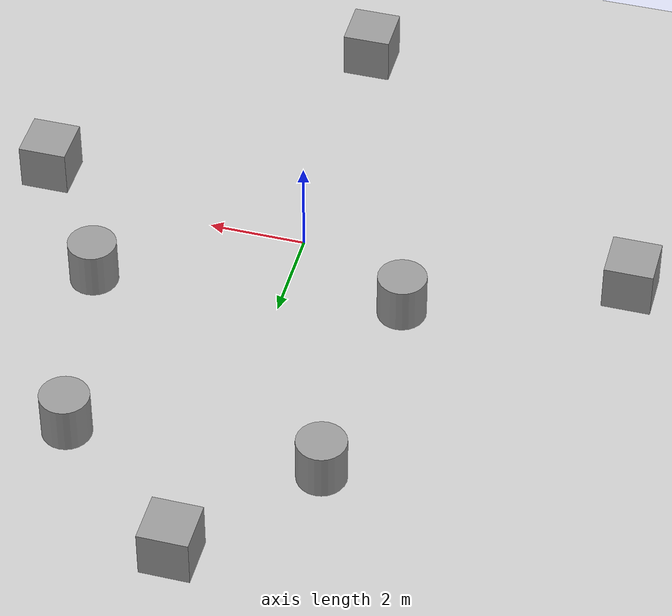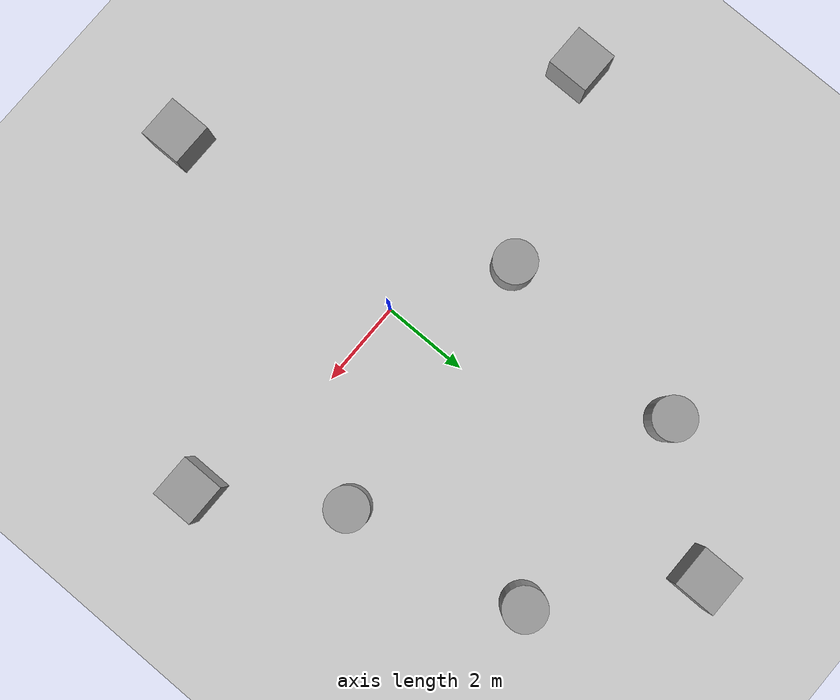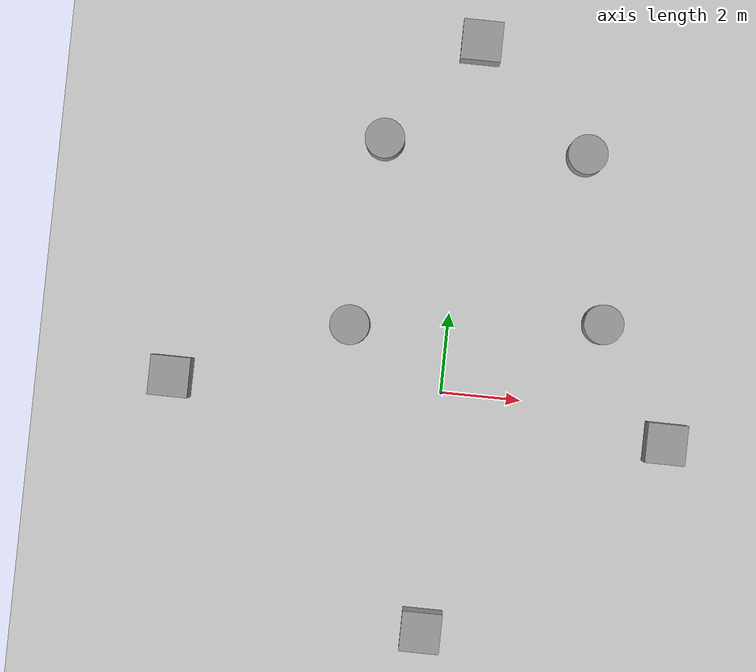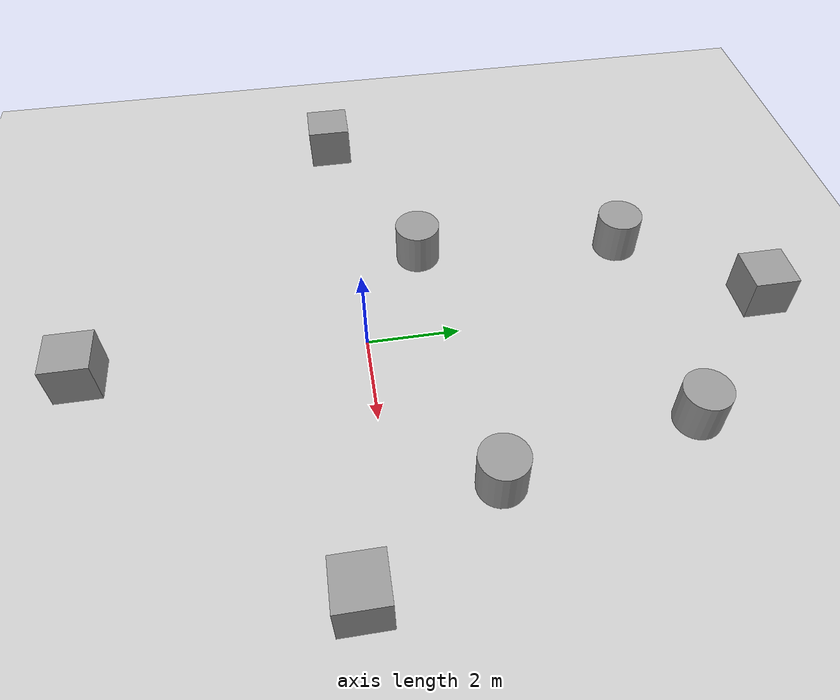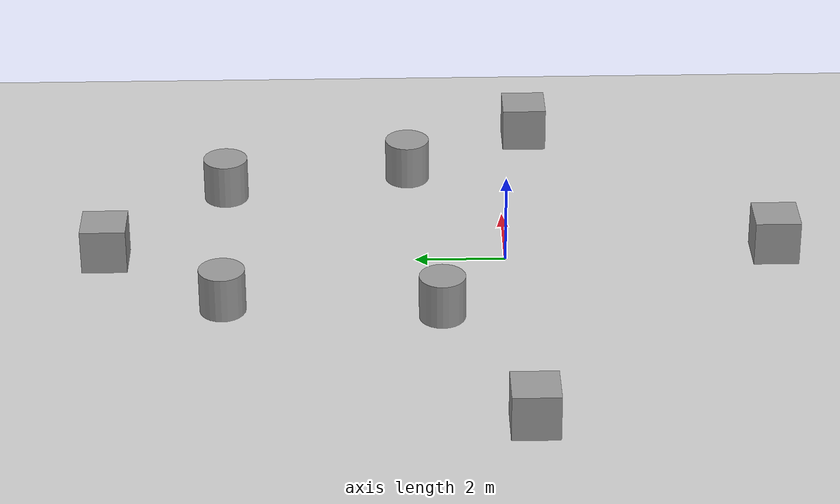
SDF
<?xml version="1.0"?>
<sdf version='1.6'>
  <world name='sample_world'>
    <light name='sun' type='directional'>
      <cast_shadows>1</cast_shadows>
      <pose frame=''>0 0 10 0 -0 0</pose>
      <diffuse>0.8 0.8 0.8 1</diffuse>
      <specular>0.2 0.2 0.2 1</specular>
      <attenuation>
        <range>1000</range>
        <constant>0.9</constant>
        <linear>0.01</linear>
        <quadratic>0.001</quadratic>
      </attenuation>
      <direction>-0.5 0.1 -0.9</direction>
    </light>
    <model name='ground_plane'>
      <static>1</static>
      <link name='link'>
        <collision name='collision'>
          <geometry>
            <plane>
              <normal>0 0 1</normal>
              <size>100 100</size>
            </plane>
          </geometry>
          <surface>
            <contact>
              <collide_bitmask>65535</collide_bitmask>
              <ode/>
            </contact>
            <friction>
              <ode>
                <mu>100</mu>
                <mu2>50</mu2>
              </ode>
              <torsional>
                <ode/>
              </torsional>
            </friction>
            <bounce/>
          </surface>
          <max_contacts>10</max_contacts>
        </collision>
        <visual name='visual'>
          <cast_shadows>0</cast_shadows>
          <geometry>
            <plane>
              <normal>0 0 1</normal>
              <size>100 100</size>
            </plane>
          </geometry>
          <material>
            <script>
              <uri>file://media/materials/scripts/gazebo.material</uri>
              <name>Gazebo/Grey</name>
            </script>
          </material>
        </visual>
        <self_collide>0</self_collide>
        <enable_wind>0</enable_wind>
        <kinematic>0</kinematic>
      </link>
    </model>
    <gravity>0 0 -9.8</gravity>
    <magnetic_field>6e-06 2.3e-05 -4.2e-05</magnetic_field>
    <atmosphere type='adiabatic'/>
    <physics name='default_physics' default='0' type='ode'>
      <max_step_size>0.001</max_step_size>
      <real_time_factor>1</real_time_factor>
      <real_time_update_rate>1000</real_time_update_rate>
    </physics>
    <scene>
      <ambient>0.4 0.4 0.4 1</ambient>
      <background>0.7 0.7 0.7 1</background>
      <shadows>1</shadows>
    </scene>
    <audio>
      <device>default</device>
    </audio>
    <wind/>
    <spherical_coordinates>
      <surface_model>EARTH_WGS84</surface_model>
      <latitude_deg>0</latitude_deg>
      <longitude_deg>0</longitude_deg>
      <elevation>0</elevation>
      <heading_deg>0</heading_deg>
    </spherical_coordinates>
    <model name='wall_0'>
      <static>1</static>
      <pose frame=''>-6.76393 -0.274292 0.5 0 -0 0</pose>
      <link name='link'>
        <inertial>
          <mass>1</mass>
          <inertia>
            <ixx>0.166667</ixx>
            <ixy>0</ixy>
            <ixz>0</ixz>
            <iyy>0.166667</iyy>
            <iyz>0</iyz>
            <izz>0.166667</izz>
          </inertia>
        </inertial>
        <collision name='collision'>
          <geometry>
            <box>
              <size>1 1 1</size>
            </box>
          </geometry>
          <max_contacts>10</max_contacts>
          <surface>
            <contact>
              <ode/>
            </contact>
            <bounce/>
            <friction>
              <torsional>
                <ode/>
              </torsional>
              <ode/>
            </friction>
          </surface>
        </collision>
        <visual name='visual'>
          <geometry>
            <box>
              <size>1 1 1</size>
            </box>
          </geometry>
          <material>
            <script>
              <name>Gazebo/Grey</name>
              <uri>file://media/materials/scripts/gazebo.material</uri>
            </script>
          </material>
        </visual>
        <self_collide>0</self_collide>
        <enable_wind>0</enable_wind>
        <kinematic>0</kinematic>
      </link>
    </model>
    <model name='wall_1'>
      <static>1</static>
      <pose frame=''>5.6941 -0.678061 0.5 0 -0 0</pose>
      <link name='link'>
        <inertial>
          <mass>1</mass>
          <inertia>
            <ixx>0.166667</ixx>
            <ixy>0</ixy>
            <ixz>0</ixz>
            <iyy>0.166667</iyy>
            <iyz>0</iyz>
            <izz>0.166667</izz>
          </inertia>
        </inertial>
        <collision name='collision'>
          <geometry>
            <box>
              <size>1 1 1</size>
            </box>
          </geometry>
          <max_contacts>10</max_contacts>
          <surface>
            <contact>
              <ode/>
            </contact>
            <bounce/>
            <friction>
              <torsional>
                <ode/>
              </torsional>
              <ode/>
            </friction>
          </surface>
        </collision>
        <visual name='visual'>
          <geometry>
            <box>
              <size>1 1 1</size>
            </box>
          </geometry>
          <material>
            <script>
              <name>Gazebo/Grey</name>
              <uri>file://media/materials/scripts/gazebo.material</uri>
            </script>
          </material>
        </visual>
        <self_collide>0</self_collide>
        <enable_wind>0</enable_wind>
        <kinematic>0</kinematic>
      </link>
    </model>
    <model name='wall_2'>
      <static>1</static>
      <pose frame=''>0.105381 8.81736 0.5 0 -0 0</pose>
      <link name='link'>
        <inertial>
          <mass>1</mass>
          <inertia>
            <ixx>0.166667</ixx>
            <ixy>0</ixy>
            <ixz>0</ixz>
            <iyy>0.166667</iyy>
            <iyz>0</iyz>
            <izz>0.166667</izz>
          </inertia>
        </inertial>
        <collision name='collision'>
          <geometry>
            <box>
              <size>1 1 1</size>
            </box>
          </geometry>
          <max_contacts>10</max_contacts>
          <surface>
            <contact>
              <ode/>
            </contact>
            <bounce/>
            <friction>
              <torsional>
                <ode/>
              </torsional>
              <ode/>
            </friction>
          </surface>
        </collision>
        <visual name='visual'>
          <geometry>
            <box>
              <size>1 1 1</size>
            </box>
          </geometry>
          <material>
            <script>
              <name>Gazebo/Grey</name>
              <uri>file://media/materials/scripts/gazebo.material</uri>
            </script>
          </material>
        </visual>
        <self_collide>0</self_collide>
        <enable_wind>0</enable_wind>
        <kinematic>0</kinematic>
      </link>
    </model>
    <model name='wall_3'>
      <static>1</static>
      <pose frame=''>0.104037 -5.95985 0.5 0 -0 0</pose>
      <link name='link'>
        <inertial>
          <mass>1</mass>
          <inertia>
            <ixx>0.166667</ixx>
            <ixy>0</ixy>
            <ixz>0</ixz>
            <iyy>0.166667</iyy>
            <iyz>0</iyz>
            <izz>0.166667</izz>
          </inertia>
        </inertial>
        <collision name='collision'>
          <geometry>
            <box>
              <size>0.999999 1 1</size>
            </box>
          </geometry>
          <max_contacts>10</max_contacts>
          <surface>
            <contact>
              <ode/>
            </contact>
            <bounce/>
            <friction>
              <torsional>
                <ode/>
              </torsional>
              <ode/>
            </friction>
          </surface>
        </collision>
        <visual name='visual'>
          <geometry>
            <box>
              <size>0.999999 1 1</size>
            </box>
          </geometry>
          <material>
            <script>
              <name>Gazebo/Grey</name>
              <uri>file://media/materials/scripts/gazebo.material</uri>
            </script>
          </material>
        </visual>
        <self_collide>0</self_collide>
        <enable_wind>0</enable_wind>
        <kinematic>0</kinematic>
      </link>
    </model>
    <model name='cylinder_0'>
      <static>1</static>
      <pose frame=''>3.01145 6.27605 0.5 0 -0 0</pose>
      <link name='link'>
        <inertial>
          <mass>1</mass>
          <inertia>
            <ixx>0.145833</ixx>
            <ixy>0</ixy>
            <ixz>0</ixz>
            <iyy>0.145833</iyy>
            <iyz>0</iyz>
            <izz>0.125</izz>
          </inertia>
        </inertial>
        <collision name='collision'>
          <geometry>
            <cylinder>
              <radius>0.5</radius>
              <length>1</length>
            </cylinder>
          </geometry>
          <max_contacts>10</max_contacts>
          <surface>
            <contact>
              <ode/>
            </contact>
            <bounce/>
            <friction>
              <torsional>
                <ode/>
              </torsional>
              <ode/>
            </friction>
          </surface>
        </collision>
        <visual name='visual'>
          <geometry>
            <cylinder>
              <radius>0.5</radius>
              <length>1</length>
            </cylinder>
          </geometry>
          <material>
            <script>
              <name>Gazebo/Grey</name>
              <uri>file://media/materials/scripts/gazebo.material</uri>
            </script>
          </material>
        </visual>
        <self_collide>0</self_collide>
        <enable_wind>0</enable_wind>
        <kinematic>0</kinematic>
      </link>
    </model>
    <model name='cylinder_1'>
      <static>1</static>
      <pose frame=''>-2.04763 6.1545 0.5 0 -0 0</pose>
      <link name='link'>
        <inertial>
          <mass>1</mass>
          <inertia>
            <ixx>0.145833</ixx>
            <ixy>0</ixy>
            <ixz>0</ixz>
            <iyy>0.145833</iyy>
            <iyz>0</iyz>
            <izz>0.125</izz>
          </inertia>
        </inertial>
        <collision name='collision'>
          <geometry>
            <cylinder>
              <radius>0.5</radius>
              <length>1</length>
            </cylinder>
          </geometry>
          <max_contacts>10</max_contacts>
          <surface>
            <contact>
              <ode/>
            </contact>
            <bounce/>
            <friction>
              <torsional>
                <ode/>
              </torsional>
              <ode/>
            </friction>
          </surface>
        </collision>
        <visual name='visual'>
          <geometry>
            <cylinder>
              <radius>0.5</radius>
              <length>1</length>
            </cylinder>
          </geometry>
          <material>
            <script>
              <name>Gazebo/Grey</name>
              <uri>file://media/materials/scripts/gazebo.material</uri>
            </script>
          </material>
        </visual>
        <self_collide>0</self_collide>
        <enable_wind>0</enable_wind>
        <kinematic>0</kinematic>
      </link>
    </model>
    <model name='cylinder_2'>
      <static>1</static>
      <pose frame=''>-2.43816 1.45994 0.5 0 -0 0</pose>
      <link name='link'>
        <inertial>
          <mass>1</mass>
          <inertia>
            <ixx>0.145833</ixx>
            <ixy>0</ixy>
            <ixz>0</ixz>
            <iyy>0.145833</iyy>
            <iyz>0</iyz>
            <izz>0.125</izz>
          </inertia>
        </inertial>
        <collision name='collision'>
          <geometry>
            <cylinder>
              <radius>0.5</radius>
              <length>1</length>
            </cylinder>
          </geometry>
          <max_contacts>10</max_contacts>
          <surface>
            <contact>
              <ode/>
            </contact>
            <bounce/>
            <friction>
              <torsional>
                <ode/>
              </torsional>
              <ode/>
            </friction>
          </surface>
        </collision>
        <visual name='visual'>
          <geometry>
            <cylinder>
              <radius>0.5</radius>
              <length>1</length>
            </cylinder>
          </geometry>
          <material>
            <script>
              <name>Gazebo/Grey</name>
              <uri>file://media/materials/scripts/gazebo.material</uri>
            </script>
          </material>
        </visual>
        <self_collide>0</self_collide>
        <enable_wind>0</enable_wind>
        <kinematic>0</kinematic>
      </link>
    </model>
    <model name='cylinder_3'>
      <static>1</static>
      <pose frame=''>3.83643 2.11253 0.5 0 -0 0</pose>
      <link name='link'>
        <inertial>
          <mass>1</mass>
          <inertia>
            <ixx>0.145833</ixx>
            <ixy>0</ixy>
            <ixz>0</ixz>
            <iyy>0.145833</iyy>
            <iyz>0</iyz>
            <izz>0.125</izz>
          </inertia>
        </inertial>
        <collision name='collision'>
          <geometry>
            <cylinder>
              <radius>0.5</radius>
              <length>1</length>
            </cylinder>
          </geometry>
          <max_contacts>10</max_contacts>
          <surface>
            <contact>
              <ode/>
            </contact>
            <bounce/>
            <friction>
              <torsional>
                <ode/>
              </torsional>
              <ode/>
            </friction>
          </surface>
        </collision>
        <visual name='visual'>
          <geometry>
            <cylinder>
              <radius>0.5</radius>
              <length>1</length>
            </cylinder>
          </geometry>
          <material>
            <script>
              <name>Gazebo/Grey</name>
              <uri>file://media/materials/scripts/gazebo.material</uri>
            </script>
          </material>
        </visual>
        <self_collide>0</self_collide>
        <enable_wind>0</enable_wind>
        <kinematic>0</kinematic>
      </link>
    </model>
    <gui fullscreen='0'>
      <camera name='user_camera'>
        <pose frame=''>-16.7443 -6.20219 18.8086 0 0.95164 0.300194</pose>
        <view_controller>orbit</view_controller>
        <projection_type>perspective</projection_type>
      </camera>
    </gui>
  </world>
</sdf>
